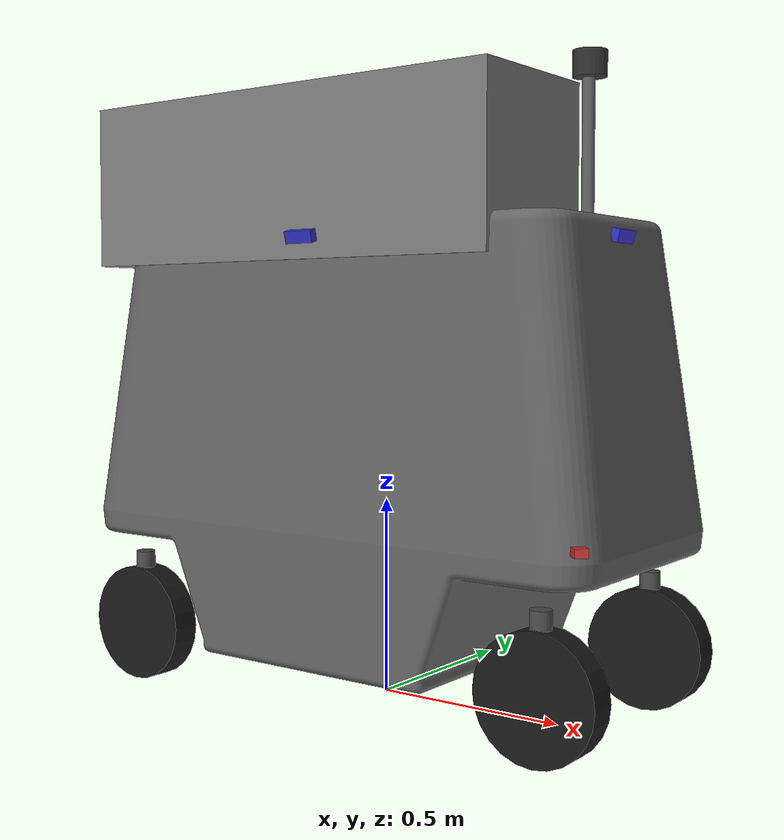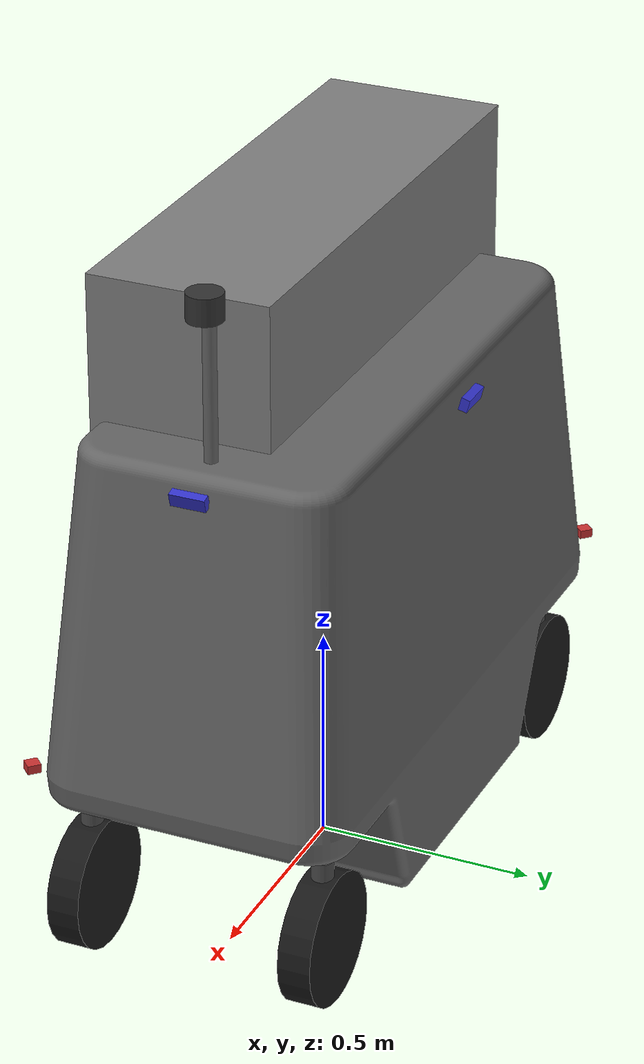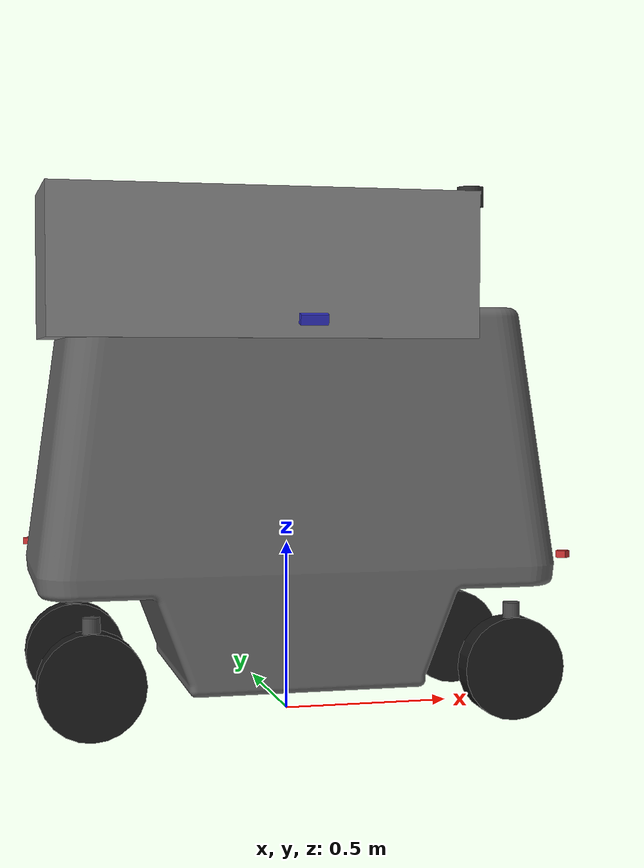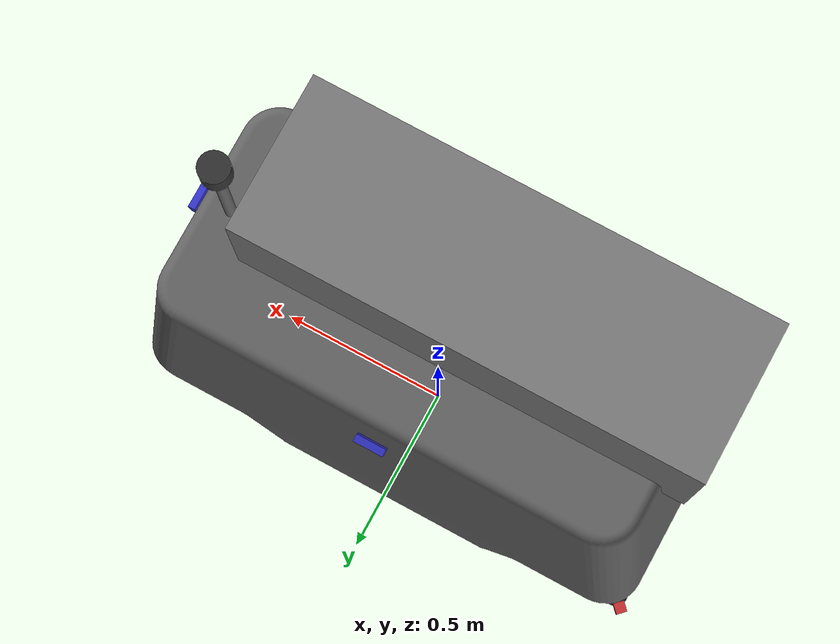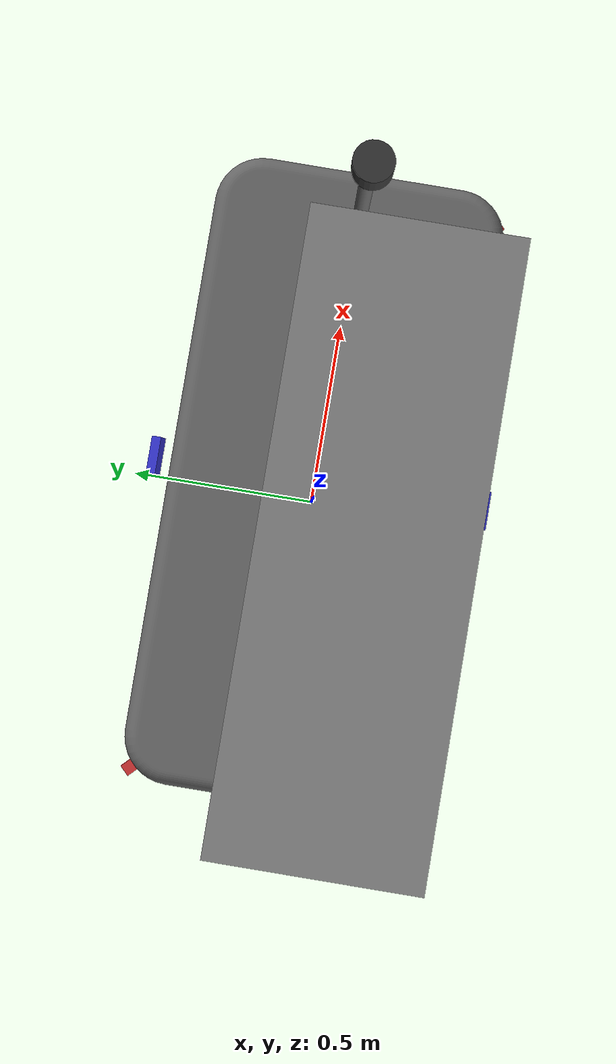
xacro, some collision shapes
<?xml version="1.0"?>
<robot xmlns:xacro="http://www.ros.org/wiki/xacro" name="g60pro">
  <!-- G60 Pro: 4轮8驱（每轮独立驱动+转向）+ 多线激光雷达 + 2单线 + 4路单目3D结构光RGBD(朝外略下倾) -->
  <!-- REP-105: x 前, y 左, z 上；地面 z=0 -->
  <!-- ros2_control 控制器配置路径，由 launch 传入 -->
  <xacro:property name="controllers_file" value=""/>

  <!-- ==================== 激光雷达类型选择 ==================== -->
  <!-- 支持: robosense_16 (速腾16线) / livox_mid360 (Livox Mid360) -->
  <!-- 通过 launch 文件传入: xacro:g60pro lidar_type:="livox_mid360" -->
  <xacro:arg name="lidar_type" default="robosense_16"/>
  <xacro:property name="_lidar_type" value="$(arg lidar_type)"/>

  <xacro:property name="chassis_x" value="1.5"/>
  <xacro:property name="chassis_y" value="1.0"/>
  <xacro:property name="chassis_z" value="1.0"/>
  <xacro:property name="ground_clearance" value="0.155"/>
  <!-- 车体中心离地高度 = 离地间隙 + 半高 -->
  <xacro:property name="base_link_z" value="${ground_clearance + chassis_z / 2}"/>
  <!-- 轮子：轮心离地 = wheel_radius（轮底贴地），在车身与地面之间；与 chassis_z 无关，仅用 ground_clearance -->
  <!-- 注意：必须与后面轮子几何定义处保持一致（均为 0.15m）-->
  <xacro:property name="wheel_radius" value="0.15"/>
  <xacro:property name="wheel_z" value="${wheel_radius - base_link_z}"/>
  <xacro:property name="steer_offset_up" value="0.15"/>
  <xacro:property name="steer_z" value="${wheel_z + steer_offset_up}"/>
  <xacro:property name="camera_height_from_ground" value="1.2"/>
  <!-- 相机相对 base_link 的 z -->
  <xacro:property name="camera_z" value="${camera_height_from_ground - base_link_z}"/>
  <!-- 单线雷达离地高度（相对 base_footprint），相对 base_link 的 z -->
  <xacro:property name="single_lidar_height_from_ground" value="0.486"/>
  <xacro:property name="single_lidar_z" value="${single_lidar_height_from_ground - base_link_z}"/>
  <!-- 单线雷达在车身外：前后超出 single_lidar_outset_x，左右超出 single_lidar_outset_y -->
  <xacro:property name="single_lidar_outset_x" value="0.0"/>
  <xacro:property name="single_lidar_outset_y" value="0.0"/>
  <xacro:property name="single_lidar_front_x" value="0.738"/><!-- X距离中心738mm -->
  <!-- 后侧 x -->
  <xacro:property name="single_lidar_rear_x" value="-0.738"/><!-- X距离中心738mm -->
  <xacro:property name="single_lidar_left_y" value="0.34"/><!-- Y距离中心340mm -->
  <!-- 右侧 y -->
  <xacro:property name="single_lidar_right_y" value="-0.34"/><!-- Y距离中心340mm -->
  <!-- ==================== 激光雷达宏定义 ==================== -->
  <!-- 速腾16线激光雷达宏 -->
  <xacro:macro name="robosense_16_lidar" params="name parent xyz rpy">
    <link name="${name}_link">
      <visual>
        <geometry><cylinder radius="0.04" length="0.06"/></geometry>
        <material name="dark"><color rgba="0.2 0.2 0.2 1"/></material>
      </visual>
      <inertial><mass value="0.001"/><inertia ixx="1e-6" ixy="0" ixz="0" iyy="1e-6" iyz="0" izz="1e-6"/></inertial>
    </link>
    <joint name="${name}_joint" type="fixed">
      <parent link="${parent}"/>
      <child link="${name}_link"/>
      <origin xyz="${xyz}" rpy="${rpy}"/>
    </joint>
    <gazebo reference="${name}_link">
      <sensor type="gpu_ray" name="${name}_sensor">
        <update_rate>50</update_rate>
        <visualize>false</visualize>
        <ray>
          <scan>
            <horizontal>
              <samples>720</samples>
              <resolution>1</resolution>
              <min_angle>-3.14159</min_angle>
              <max_angle>3.14159</max_angle>
            </horizontal>
            <vertical>
              <samples>16</samples>
              <resolution>1</resolution>
              <min_angle>-0.261799</min_angle>
              <max_angle>0.261799</max_angle>
            </vertical>
          </scan>
          <range>
            <min>0.10</min>
            <max>150.0</max>
            <resolution>0.01</resolution>
          </range>
          <noise>
            <type>gaussian</type>
            <mean>0.0</mean>
            <stddev>0.01</stddev>
          </noise>
        </ray>
        <plugin name="gazebo_ros_${name}" filename="libgazebo_ros_ray_sensor.so">
          <ros>
            <namespace>/lidar</namespace>
            <remapping>~/out:=multi/points</remapping>
          </ros>
          <output_type>sensor_msgs/PointCloud2</output_type>
          <frame_name>${name}_link</frame_name>
        </plugin>
      </sensor>
    </gazebo>
    <gazebo reference="${name}_link"><material>Gazebo/DarkGrey</material></gazebo>
  </xacro:macro>

  <!-- Livox Mid360激光雷达宏 -->
  <xacro:macro name="livox_mid360_lidar" params="name parent xyz rpy">
    <link name="${name}_link">
      <visual>
        <geometry><cylinder radius="0.035" length="0.055"/></geometry>
        <material name="dark"><color rgba="0.15 0.15 0.15 1"/></material>
      </visual>
      <inertial><mass value="0.001"/><inertia ixx="1e-6" ixy="0" ixz="0" iyy="1e-6" iyz="0" izz="1e-6"/></inertial>
    </link>
    <joint name="${name}_joint" type="fixed">
      <parent link="${parent}"/>
      <child link="${name}_link"/>
      <origin xyz="${xyz}" rpy="${rpy}"/>
    </joint>
    <gazebo reference="${name}_link">
      <sensor type="gpu_ray" name="${name}_sensor">
        <update_rate>50</update_rate>
        <visualize>false</visualize>
        <ray>
          <scan>
            <horizontal>
              <samples>720</samples>
              <resolution>1</resolution>
              <min_angle>-3.14159</min_angle>
              <max_angle>3.14159</max_angle>
            </horizontal>
            <vertical>
              <samples>32</samples>
              <resolution>1</resolution>
              <min_angle>-0.785398</min_angle>
              <max_angle>0.785398</max_angle>
            </vertical>
          </scan>
          <range>
            <min>0.10</min>
            <max>100.0</max>
            <resolution>0.01</resolution>
          </range>
          <noise>
            <type>gaussian</type>
            <mean>0.0</mean>
            <stddev>0.005</stddev>
          </noise>
        </ray>
        <plugin name="gazebo_ros_${name}" filename="libgazebo_ros_ray_sensor.so">
          <ros>
            <namespace>/lidar</namespace>
            <remapping>~/out:=multi/points</remapping>
          </ros>
          <output_type>sensor_msgs/PointCloud2</output_type>
          <frame_name>${name}_link</frame_name>
        </plugin>
      </sensor>
    </gazebo>
    <gazebo reference="${name}_link"><material>Gazebo/DarkGrey</material></gazebo>
  </xacro:macro>

  <!-- ==================== 通用参数 ==================== -->
  <!-- 多线雷达安装参数（两种雷达通用） -->
  <xacro:property name="multi_lidar_height_from_ground" value="1.54"/><!-- 16s中心离地1540mm -->
  <xacro:property name="multi_lidar_z" value="${multi_lidar_height_from_ground - base_link_z}"/>
  <xacro:property name="multi_lidar_offset_x" value="0.574"/><!-- 16s与立柱同轴，X偏差574mm -->

  <!-- base_footprint: 地面投影点，z=0 -->
  <link name="base_footprint"/>

  <!-- base_link: 车体中心，整体上移使底盘底面离地 ground_clearance -->
  <link name="base_link">
    <visual>
      <geometry>
        <mesh filename="package://robot_description/meshes/g60pro/body.stl" scale="0.001 0.001 0.001"/>
      </geometry>
      <origin xyz="0 0 0" rpy="0 0 0"/>
      <material name="grey"><color rgba="0.4 0.4 0.4 1"/></material>
    </visual>
    <!-- collision 用 box 代替 mesh，避免 ODE 与地面做 mesh 碰撞检测时崩溃 -->
    <!-- 碰撞体底部对齐 ground_clearance，确保不穿透地面 -->
    <collision>
      <geometry>
        <box size="${chassis_x} ${chassis_y} ${chassis_z}"/>
      </geometry>
      <origin xyz="0 0 ${ground_clearance}" rpy="0 0 0"/>
    </collision>
    <inertial>
      <mass value="0.001"/>
      <inertia ixx="1e-6" ixy="0" ixz="0" iyy="1e-6" iyz="0" izz="1e-6"/>
    </inertial>
  </link>
  <joint name="base_footprint_joint" type="fixed">
    <parent link="base_footprint"/>
    <child link="base_link"/>
    <origin xyz="0 0 ${base_link_z}" rpy="0 0 0"/>
  </joint>

  <!-- ==================== 机械臂（悬臂） ==================== -->
  <!-- 原点与车顶在同一平面，X向500mm，Y向0 -->
  <link name="manipulator_base_link">
    <visual>
      <geometry>
        <mesh filename="package://robot_description/meshes/g60pro/manipulator.stl" scale="0.001 0.001 0.001"/>
      </geometry>
      <origin xyz="0 0 0" rpy="0 0 0"/>
      <material name="grey"><color rgba="0.5 0.5 0.5 1"/></material>
    </visual>
    <!-- collision 用简单 box 代替 mesh，避免 ODE 因高多边形 mesh 与地面碰撞检测崩溃 -->
    <!-- 机械臂 STL 范围：x(-1.128~0.093) y(-0.309~0.103) z(-0.051~0.366)，单位 m -->
    <collision>
      <geometry>
        <box size="1.221 0.412 0.417"/>
      </geometry>
      <origin xyz="-0.518 -0.103 0.158" rpy="0 0 0"/>
    </collision>
    <inertial>
      <mass value="0.001"/>
      <inertia ixx="1e-6" ixy="0" ixz="0" iyy="1e-6" iyz="0" izz="1e-6"/>
    </inertial>
  </link>
  <joint name="manipulator_base_joint" type="fixed">
    <parent link="base_link"/>
    <child link="manipulator_base_link"/>
    <origin xyz="0.4 0 0.5" rpy="0 0 0"/>
  </joint>

  <!-- Gazebo：机械臂材质，禁用重力防止拉扯车体 -->
  <gazebo reference="manipulator_base_link">
    <material>Gazebo/Grey</material>
    <gravity>0</gravity>
  </gazebo>

  <!-- ==================== 多线激光雷达（条件编译） ==================== -->
  <!-- 根据 lidar_type 参数选择对应的激光雷达模型 -->
  <xacro:if value="${_lidar_type == 'robosense_16'}">
    <xacro:robosense_16_lidar name="rs16" parent="base_link" xyz="${multi_lidar_offset_x} 0 ${multi_lidar_z}" rpy="0 0 0"/>
  </xacro:if>
  <xacro:if value="${_lidar_type == 'livox_mid360'}">
    <xacro:livox_mid360_lidar name="livox" parent="base_link" xyz="${multi_lidar_offset_x} 0 ${multi_lidar_z}" rpy="0 0 0"/>
  </xacro:if>
  <xacro:unless value="${_lidar_type == 'robosense_16' or _lidar_type == 'livox_mid360'}">
    <!-- 默认使用速腾16线 -->
    <xacro:robosense_16_lidar name="rs16" parent="base_link" xyz="${multi_lidar_offset_x} 0 ${multi_lidar_z}" rpy="0 0 0"/>
  </xacro:unless>

  <!-- 单线 1: 物理右前（橙色），车身外；正装(roll 0°) + 250° 扇区朝右前(yaw -45°) -->
  <link name="single_lidar_1_link">
    <visual>
      <geometry><box size="0.03 0.03 0.02"/></geometry>
      <material name="red"><color rgba="0.8 0.2 0.2 1"/></material>
    </visual>
    <inertial><mass value="0.001"/><inertia ixx="1e-6" ixy="0" ixz="0" iyy="1e-6" iyz="0" izz="1e-6"/></inertial>
  </link>
  <joint name="single_lidar_1_joint" type="fixed">
    <parent link="base_link"/>
    <child link="single_lidar_1_link"/>
    <origin xyz="${single_lidar_front_x} ${single_lidar_right_y} ${single_lidar_z}" rpy="0 0 -0.785398"/>
  </joint>
  <!-- 单线 1 仿真：ray 传感器发布 LaserScan，话题 /lidar/single_1/scan，与 hardware_spec 一致 -->
  <gazebo reference="single_lidar_1_link">
    <sensor type="ray" name="single_lidar_1_sensor">
      <visualize>false</visualize>
      <pose>0 0 0 0 0 0</pose>
      <ray>
        <scan>
          <horizontal>
            <samples>360</samples>
            <resolution>1</resolution>
            <min_angle>-2.26893</min_angle>
            <max_angle>2.26893</max_angle>
          </horizontal>
        </scan>
        <range>
          <min>0.10</min>
          <max>10.0</max>
          <resolution>0.01</resolution>
        </range>
        <noise>
          <type>gaussian</type>
          <mean>0.0</mean>
          <stddev>0.01</stddev>
        </noise>
      </ray>
      <update_rate>10</update_rate>
      <plugin name="gazebo_ros_single_lidar_1" filename="libgazebo_ros_ray_sensor.so">
        <ros>
          <namespace>/lidar/single_1</namespace>
          <remapping>~/out:=scan</remapping>
        </ros>
        <output_type>sensor_msgs/LaserScan</output_type>
        <frame_name>single_lidar_1_link</frame_name>
      </plugin>
    </sensor>
  </gazebo>

  <!-- 单线 2: 物理左后（绿色），车身外；正装(roll 0°) + 250° 扇区朝左后(yaw 135°) -->
  <link name="single_lidar_2_link">
    <visual>
      <geometry><box size="0.03 0.03 0.02"/></geometry>
      <material name="red"><color rgba="0.8 0.2 0.2 1"/></material>
    </visual>
    <inertial><mass value="0.001"/><inertia ixx="1e-6" ixy="0" ixz="0" iyy="1e-6" iyz="0" izz="1e-6"/></inertial>
  </link>
  <joint name="single_lidar_2_joint" type="fixed">
    <parent link="base_link"/>
    <child link="single_lidar_2_link"/>
    <origin xyz="${single_lidar_rear_x} ${single_lidar_left_y} ${single_lidar_z}" rpy="0 0 2.35619"/>
  </joint>
  <!-- 单线 2 仿真：ray 传感器发布 LaserScan，话题 /lidar/single_2/scan，与 hardware_spec 一致 -->
  <gazebo reference="single_lidar_2_link">
    <sensor type="ray" name="single_lidar_2_sensor">
      <visualize>false</visualize>
      <pose>0 0 0 0 0 0</pose>
      <ray>
        <scan>
          <horizontal>
            <samples>360</samples>
            <resolution>1</resolution>
            <min_angle>-2.26893</min_angle>
            <max_angle>2.26893</max_angle>
          </horizontal>
        </scan>
        <range>
          <min>0.10</min>
          <max>10.0</max>
          <resolution>0.01</resolution>
        </range>
        <noise>
          <type>gaussian</type>
          <mean>0.0</mean>
          <stddev>0.01</stddev>
        </noise>
      </ray>
      <update_rate>10</update_rate>
      <plugin name="gazebo_ros_single_lidar_2" filename="libgazebo_ros_ray_sensor.so">
        <ros>
          <namespace>/lidar/single_2</namespace>
          <remapping>~/out:=scan</remapping>
        </ros>
        <output_type>sensor_msgs/LaserScan</output_type>
        <frame_name>single_lidar_2_link</frame_name>
      </plugin>
    </sensor>
  </gazebo>

  <!-- 4 路单目 3D 结构光 RGBD（DaBai DCW2-DW2）：前/后/左/右各一，朝车身外、略朝下（pitch ≈ -15°）；RGB 与深度共用 optical_frame -->
  <!-- 前：+x 方向朝外、略下倾 -->
  <link name="camera_front_link">
    <visual>
      <geometry><box size="0.02 0.08 0.03"/></geometry>
      <material name="blue"><color rgba="0.2 0.2 0.8 1"/></material>
    </visual>
    <inertial><mass value="0.001"/><inertia ixx="1e-6" ixy="0" ixz="0" iyy="1e-6" iyz="0" izz="1e-6"/></inertial>
  </link>
  <joint name="camera_front_joint" type="fixed">
    <parent link="base_link"/>
    <child link="camera_front_link"/>
    <origin xyz="0.66 0 0.493" rpy="0 0.26 0"/>
  </joint>
  <link name="camera_front_optical_frame"/>
  <joint name="camera_front_optical_joint" type="fixed">
    <parent link="camera_front_link"/>
    <child link="camera_front_optical_frame"/>
    <origin xyz="0 0 0" rpy="-1.5708 0 -1.5708"/>
  </joint>
  <!-- 前向 RGBD 仿真：depth 传感器 + libgazebo_ros_camera.so，话题与 config/hal/cameras.yaml 一致；视锥红色以区分单线雷达 -->
  <gazebo reference="camera_front_link">
    <sensor type="depth" name="camera_front_sensor">
      <update_rate>10</update_rate>
      <visualize>true</visualize>
      <camera>
        <horizontal_fov>1.047</horizontal_fov>
        <image>
          <width>320</width>
          <height>240</height>
          <format>R8G8B8</format>
        </image>
        <depth_camera>
        </depth_camera>
        <clip>
          <near>0.2</near>
          <far>5.0</far>
        </clip>
        <noise>
          <type>gaussian</type>
          <mean>0.0</mean>
          <stddev>0.007</stddev>
        </noise>
      </camera>
      <plugin name="camera_front_plugin" filename="libgazebo_ros_camera.so">
        <ros>
          <namespace>/camera</namespace>
        </ros>
        <camera_name>front</camera_name>
        <frame_name>camera_front_optical_frame</frame_name>
        <min_depth>0.2</min_depth>
        <max_depth>5.0</max_depth>
      </plugin>
    </sensor>
  </gazebo>

  <!-- 后：-x 方向朝外、略下倾 -->
  <link name="camera_rear_link">
    <visual>
      <geometry><box size="0.02 0.08 0.03"/></geometry>
      <material name="blue"><color rgba="0.2 0.2 0.8 1"/></material>
    </visual>
    <inertial><mass value="0.001"/><inertia ixx="1e-6" ixy="0" ixz="0" iyy="1e-6" iyz="0" izz="1e-6"/></inertial>
  </link>
  <joint name="camera_rear_joint" type="fixed">
    <parent link="base_link"/>
    <child link="camera_rear_link"/>
    <origin xyz="-0.66 0 0.5" rpy="0 0.26 3.14159"/>
  </joint>
  <link name="camera_rear_optical_frame"/>
  <joint name="camera_rear_optical_joint" type="fixed">
    <parent link="camera_rear_link"/>
    <child link="camera_rear_optical_frame"/>
    <origin xyz="0 0 0" rpy="-1.5708 0 -1.5708"/>
  </joint>
  <!-- 后向 RGBD：视锥红色，与单线雷达区分 -->
  <gazebo reference="camera_rear_link">
    <sensor type="depth" name="camera_rear_sensor">
      <update_rate>10</update_rate>
      <visualize>true</visualize>
      <camera>
        <horizontal_fov>1.047</horizontal_fov>
        <image><width>320</width><height>240</height><format>R8G8B8</format></image>
        <depth_camera></depth_camera>
        <clip><near>0.2</near><far>5.0</far></clip>
        <noise><type>gaussian</type><mean>0.0</mean><stddev>0.007</stddev></noise>
      </camera>
      <plugin name="camera_rear_plugin" filename="libgazebo_ros_camera.so">
        <ros><namespace>/camera</namespace></ros>
        <camera_name>rear</camera_name>
        <frame_name>camera_rear_optical_frame</frame_name>
        <min_depth>0.2</min_depth>
        <max_depth>5.0</max_depth>
      </plugin>
    </sensor>
  </gazebo>

  <!-- 左：+y 方向朝外、略下倾；box 薄边(0.02)沿 y 贴车身，8×3 在侧面平面 -->
  <link name="camera_left_link">
    <visual>
      <geometry><box size="0.02 0.08 0.03"/></geometry>
      <material name="blue"><color rgba="0.2 0.2 0.8 1"/></material>
    </visual>
    <inertial><mass value="0.001"/><inertia ixx="1e-6" ixy="0" ixz="0" iyy="1e-6" iyz="0" izz="1e-6"/></inertial>
  </link>
  <joint name="camera_left_joint" type="fixed">
    <parent link="base_link"/>
    <child link="camera_left_link"/>
    <origin xyz="0 0.341 0.5" rpy="0 0.26 1.5708"/>
  </joint>
  <link name="camera_left_optical_frame"/>
  <joint name="camera_left_optical_joint" type="fixed">
    <parent link="camera_left_link"/>
    <child link="camera_left_optical_frame"/>
    <origin xyz="0 0 0" rpy="-1.5708 0 -1.5708"/>
  </joint>
  <!-- 左侧 RGBD：视锥红色，与单线雷达区分 -->
  <gazebo reference="camera_left_link">
    <sensor type="depth" name="camera_left_sensor">
      <update_rate>10</update_rate>
      <visualize>true</visualize>
      <camera>
        <horizontal_fov>1.047</horizontal_fov>
        <image><width>320</width><height>240</height><format>R8G8B8</format></image>
        <depth_camera></depth_camera>
        <clip><near>0.2</near><far>5.0</far></clip>
        <noise><type>gaussian</type><mean>0.0</mean><stddev>0.007</stddev></noise>
      </camera>
      <plugin name="camera_left_plugin" filename="libgazebo_ros_camera.so">
        <ros><namespace>/camera</namespace></ros>
        <camera_name>left</camera_name>
        <frame_name>camera_left_optical_frame</frame_name>
        <min_depth>0.2</min_depth>
        <max_depth>5.0</max_depth>
      </plugin>
    </sensor>
  </gazebo>

  <!-- 右：-y 方向朝外、略下倾；box 薄边(0.02)沿 y 贴车身，8×3 在侧面平面 -->
  <link name="camera_right_link">
    <visual>
      <geometry><box size="0.02 0.08 0.03"/></geometry>
      <material name="blue"><color rgba="0.2 0.2 0.8 1"/></material>
    </visual>
    <inertial><mass value="0.001"/><inertia ixx="1e-6" ixy="0" ixz="0" iyy="1e-6" iyz="0" izz="1e-6"/></inertial>
  </link>
  <joint name="camera_right_joint" type="fixed">
    <parent link="base_link"/>
    <child link="camera_right_link"/>
    <origin xyz="0 -0.341 0.5" rpy="0 0.26 -1.5708"/>
  </joint>
  <link name="camera_right_optical_frame"/>
  <joint name="camera_right_optical_joint" type="fixed">
    <parent link="camera_right_link"/>
    <child link="camera_right_optical_frame"/>
    <origin xyz="0 0 0" rpy="-1.5708 0 -1.5708"/>
  </joint>
  <!-- 右侧 RGBD：视锥红色，与单线雷达区分 -->
  <gazebo reference="camera_right_link">
    <sensor type="depth" name="camera_right_sensor">
      <update_rate>10</update_rate>
      <visualize>true</visualize>
      <camera>
        <horizontal_fov>1.047</horizontal_fov>
        <image><width>320</width><height>240</height><format>R8G8B8</format></image>
        <depth_camera></depth_camera>
        <clip><near>0.2</near><far>5.0</far></clip>
        <noise><type>gaussian</type><mean>0.0</mean><stddev>0.007</stddev></noise>
      </camera>
      <plugin name="camera_right_plugin" filename="libgazebo_ros_camera.so">
        <ros><namespace>/camera</namespace></ros>
        <camera_name>right</camera_name>
        <frame_name>camera_right_optical_frame</frame_name>
        <min_depth>0.2</min_depth>
        <max_depth>5.0</max_depth>
      </plugin>
    </sensor>
  </gazebo>

  <!-- IMU（车体中心偏上） -->
  <link name="imu_link">
    <visual>
      <geometry><box size="0.01 0.01 0.01"/></geometry>
      <material name="green"><color rgba="0.2 0.8 0.2 1"/></material>
    </visual>
    <inertial><mass value="0.001"/><inertia ixx="1e-6" ixy="0" ixz="0" iyy="1e-6" iyz="0" izz="1e-6"/></inertial>
  </link>
  <joint name="imu_joint" type="fixed">
    <parent link="base_link"/>
    <child link="imu_link"/>
    <origin xyz="0 0 0.2" rpy="0 0 0"/>
  </joint>
  <!-- 仿真 IMU：发布 /imu，供 Cartographer 建图/定位 -->
  <gazebo reference="imu_link">
    <sensor type="imu" name="imu_sensor">
      <always_on>true</always_on>
      <update_rate>200</update_rate>
      <imu>
        <angular_velocity>
          <x><noise type="gaussian"><mean>0.0</mean><stddev>1e-4</stddev></noise></x>
          <y><noise type="gaussian"><mean>0.0</mean><stddev>1e-4</stddev></noise></y>
          <z><noise type="gaussian"><mean>0.0</mean><stddev>1e-4</stddev></noise></z>
        </angular_velocity>
        <linear_acceleration>
          <x><noise type="gaussian"><mean>0.0</mean><stddev>1e-3</stddev></noise></x>
          <y><noise type="gaussian"><mean>0.0</mean><stddev>1e-3</stddev></noise></y>
          <z><noise type="gaussian"><mean>0.0</mean><stddev>1e-3</stddev></noise></z>
        </linear_acceleration>
      </imu>
      <plugin name="imu_plugin" filename="libgazebo_ros_imu_sensor.so">
        <ros>
          <namespace>/</namespace>
          <remapping>~/out:=/imu</remapping>
        </ros>
        <frame_name>imu_link</frame_name>
      </plugin>
    </sensor>
    <material>Gazebo/Green</material>
  </gazebo>

  <!-- 4 轮 8 驱：每轮 转向(steer) + 驱动(drive 绕轮心轴滚动)；轮径 300mm，位于地面与车身之间 -->
  <xacro:property name="wheel_radius" value="0.15"/>
  <xacro:property name="wheel_width" value="0.074"/>
  <!-- 转向关节限位：±90°（1.5708 rad）；左右轮转角约定相反，右侧用 axis 0 0 -1 -->
  <xacro:property name="steer_limit_rad" value="1.5708"/>
  <!-- 轮子位置：轴距 1220mm（前/后轮心距中心 ±610mm），轮距 541mm（左右轮心距中心 ±270.5mm） -->
  <xacro:property name="wheel_x_front" value="0.61"/>
  <xacro:property name="wheel_x_rear" value="-0.61"/>
  <xacro:property name="wheel_y_left" value="0.2705"/>
  <xacro:property name="wheel_y_right" value="-0.2705"/>

  <!-- 右侧轮：电机轴朝车身内侧(+y)，需在 drive origin 上多绕 x 转 180° -->
  <xacro:property name="drive_rpy_left" value="1.5708 0 0"/>
  <xacro:property name="drive_rpy_right" value="4.71239 0 0"/>

  <!-- steer_axis: 左侧 0 0 1，右侧 0 0 -1，使左右转角约定相反（同向转弯时左右轮物理方向相反） -->
  <xacro:macro name="steerable_wheel" params="name wx wy drive_origin_rpy steer_axis">
    <!-- 转向连杆（竖轴），关节在轮心上方 15cm；Gazebo 需 collision + inertial -->
    <link name="${name}_steer_link">
      <visual>
        <geometry><cylinder radius="0.025" length="0.08"/></geometry>
        <material name="darkgrey"><color rgba="0.3 0.3 0.3 1"/></material>
      </visual>
      <collision>
        <geometry><cylinder radius="0.025" length="0.08"/></geometry>
      </collision>
      <inertial>
        <mass value="0.001"/>
        <inertia ixx="1e-6" ixy="0" ixz="0" iyy="1e-6" iyz="0" izz="1e-6"/>
      </inertial>
    </link>
    <joint name="${name}_steer_joint" type="fixed">
      <parent link="base_link"/>
      <child link="${name}_steer_link"/>
      <origin xyz="${wx} ${wy} ${steer_z}" rpy="0 0 0"/>
    </joint>
    <!-- 驱动轮：在 steer_link 下放 15cm -->
    <link name="${name}">
      <visual>
        <geometry><cylinder radius="${wheel_radius}" length="${wheel_width}"/></geometry>
        <material name="black"><color rgba="0.1 0.1 0.1 1"/></material>
      </visual>
      <collision>
        <geometry><cylinder radius="${wheel_radius}" length="${wheel_width}"/></geometry>
      </collision>
      <inertial>
        <mass value="0.001"/>
        <inertia ixx="1e-6" ixy="0" ixz="0" iyy="1e-6" iyz="0" izz="1e-6"/>
      </inertial>
    </link>
    <joint name="${name}_drive_joint" type="fixed">
      <parent link="${name}_steer_link"/>
      <child link="${name}"/>
      <origin xyz="0 0 ${-steer_offset_up}" rpy="${drive_origin_rpy}"/>
    </joint>
    <gazebo reference="${name}_steer_link">
      <material>Gazebo/DarkGrey</material>
    </gazebo>
    <gazebo reference="${name}">
      <material>Gazebo/Black</material>
    </gazebo>
    <!-- 轮地接触参数：高中度摩擦，支撑车体 -->
    <gazebo reference="${name}">
      <kp>5e5</kp>
      <kd>50.0</kd>
      <max_contacts>10</max_contacts>
      <surface>
        <friction><ode><mu>1.0</mu><mu2>1.0</mu2><slip1>0.0</slip1><slip2>0.0</slip2></ode></friction>
        <contact><ode><min_depth>0.002</min_depth></ode></contact>
      </surface>
    </gazebo>
  </xacro:macro>
  <xacro:steerable_wheel name="wheel_fl" wx="${wheel_x_front}" wy="${wheel_y_left}" drive_origin_rpy="${drive_rpy_left}" steer_axis="0 0 1"/>
  <xacro:steerable_wheel name="wheel_fr" wx="${wheel_x_front}" wy="${wheel_y_right}" drive_origin_rpy="${drive_rpy_right}" steer_axis="0 0 -1"/>
  <xacro:steerable_wheel name="wheel_rl" wx="${wheel_x_rear}" wy="${wheel_y_left}" drive_origin_rpy="${drive_rpy_left}" steer_axis="0 0 1"/>
  <xacro:steerable_wheel name="wheel_rr" wx="${wheel_x_rear}" wy="${wheel_y_right}" drive_origin_rpy="${drive_rpy_right}" steer_axis="0 0 -1"/>

  <!-- Gazebo 插件：平面运动控制器 -->
  <gazebo>
    <!-- 插件名称和库文件 -->
    <plugin name="gazebo_ros_planar_move" filename="libgazebo_ros_planar_move.so">

      <!-- ROS 配置 -->
      <ros>
        <!-- 将插件的 cmd_vel 订阅重映射到 /cmd_vel -->
        <!-- 插件内部默认话题是 cmd_vel，这里映射到标准 /cmd_vel -->
        <remapping>cmd_vel:=cmd_vel</remapping>

        <!-- 将插件的 odom 发布重映射到 /odom -->
        <!-- 插件内部默认发布 odom，这里映射到标准 /odom -->
        <remapping>odom:=odom</remapping>
      </ros>

      <!-- 更新频率 (Hz) -->
      <update_rate>100</update_rate>

      <!-- odom 话题发布频率 (Hz) -->
      <publish_rate>50</publish_rate>

      <!-- 是否发布 /odom 话题 -->
      <!-- true: 发布 odom 话题，供 Cartographer pose_extrapolator 使用 -->
      <publish_odom>true</publish_odom>

      <!-- 是否发布 odom→base_footprint TF 变换 -->
      <!-- false: 不发布 TF，odom 不出现在 TF 树中（Cartographer 独家发布 map→base_footprint） -->
      <publish_odom_tf>false</publish_odom_tf>

      <!-- odom 坐标系名称 -->
      <!-- TF 中 frame_id 将是 "odom" -->
      <odometry_frame>odom</odometry_frame>

      <!-- 机器人基座坐标系名称 -->
      <!-- TF 中 child_frame_id 将是 "base_footprint" -->
      <robot_base_frame>base_footprint</robot_base_frame>

    </plugin>
  </gazebo>

  <!-- 所有轮子关节已改为 fixed，无需 joint_state_publisher -->
  <!-- robot_state_publisher 会自动发布 fixed joint 的静态 TF -->

  <!-- Gazebo：材质与颜色，便于仿真中区分 -->
  <!-- planar_move 机器人：禁用重力防下沉；零摩擦防碰墙翻转 -->
  <gazebo reference="base_link">
    <material>Gazebo/Grey</material>
    <gravity>0</gravity>
    <max_contacts>10</max_contacts>
    <surface>
      <contact>
        <ode>
          <kp>1e4</kp>
          <kd>10.0</kd>
          <max_vel>0.1</max_vel>
          <min_depth>0.005</min_depth>
        </ode>
      </contact>
      <friction>
        <ode>
          <mu>0</mu>
          <mu2>0</mu2>
        </ode>
      </friction>
    </surface>
  </gazebo>
  <!-- 多线雷达材质在宏内部设置 -->
  <gazebo reference="single_lidar_1_link"><material>Gazebo/Red</material></gazebo>
  <gazebo reference="single_lidar_2_link"><material>Gazebo/Red</material></gazebo>
  <gazebo reference="camera_front_link"><material>Gazebo/Blue</material></gazebo>
  <gazebo reference="camera_rear_link"><material>Gazebo/Blue</material></gazebo>
  <gazebo reference="camera_left_link"><material>Gazebo/Blue</material></gazebo>
  <gazebo reference="camera_right_link"><material>Gazebo/Blue</material></gazebo>
</robot>
